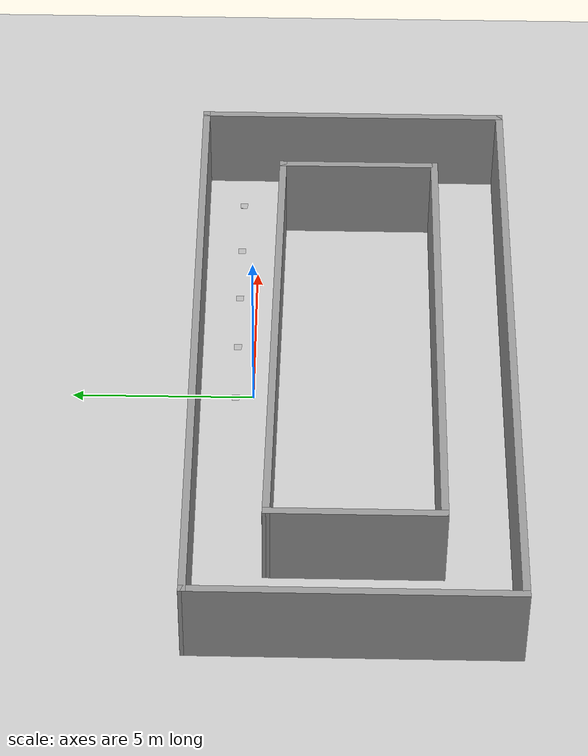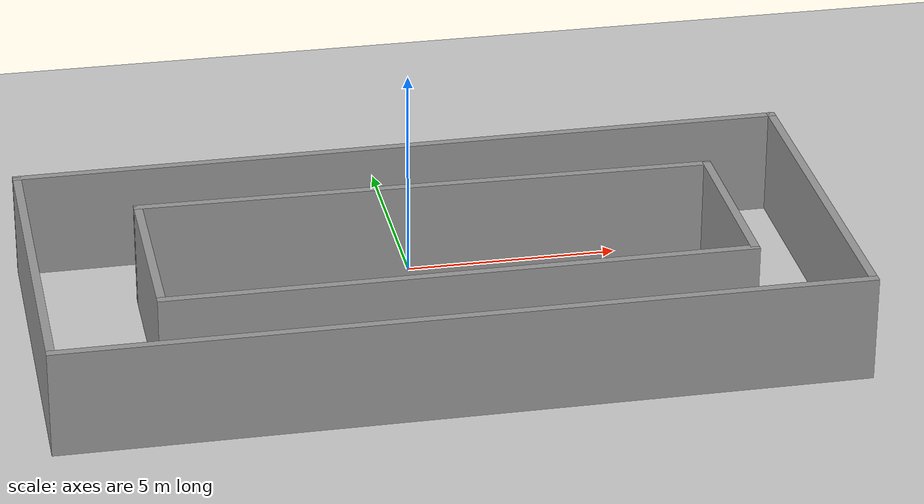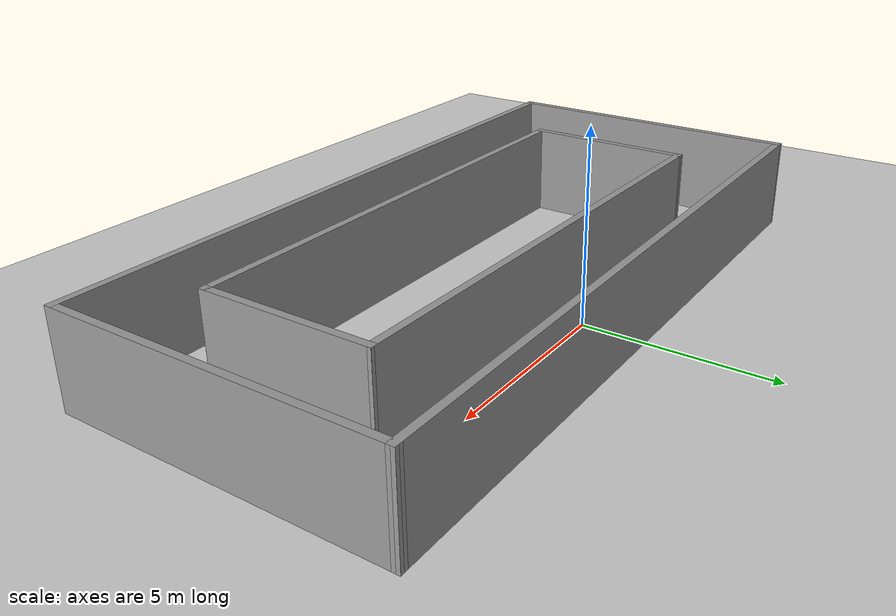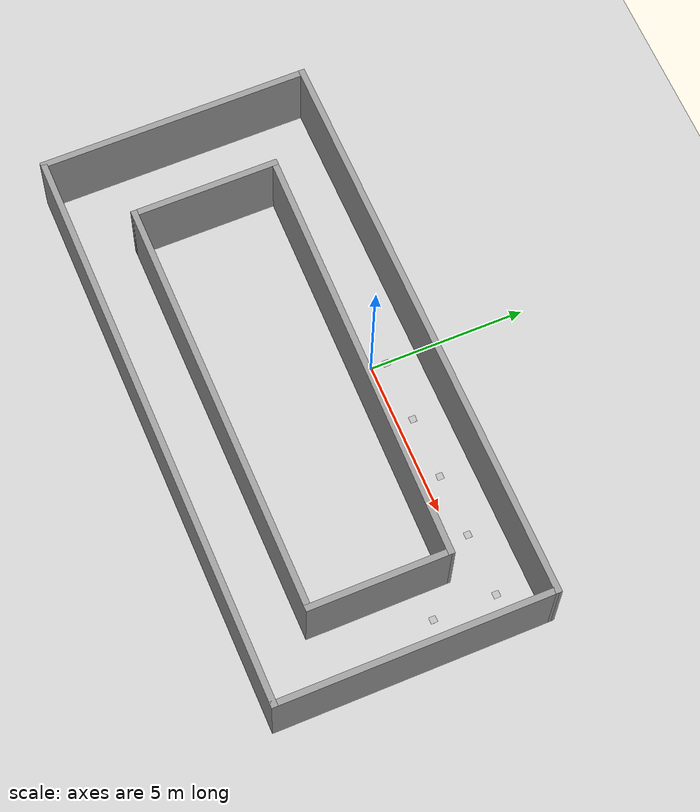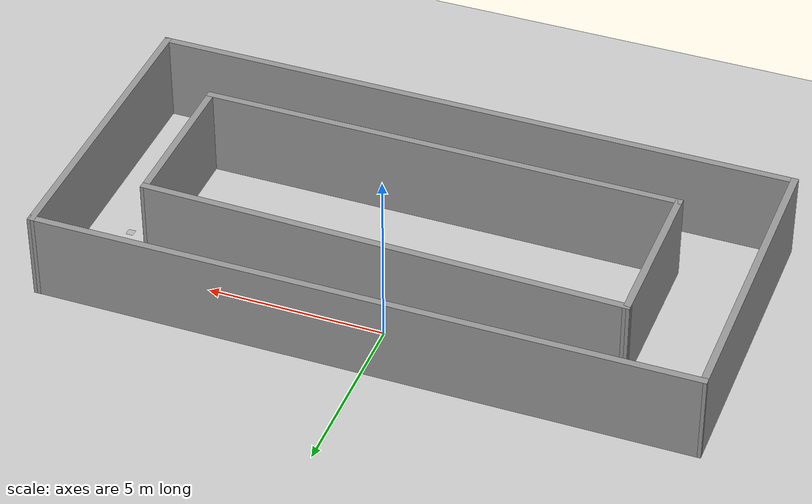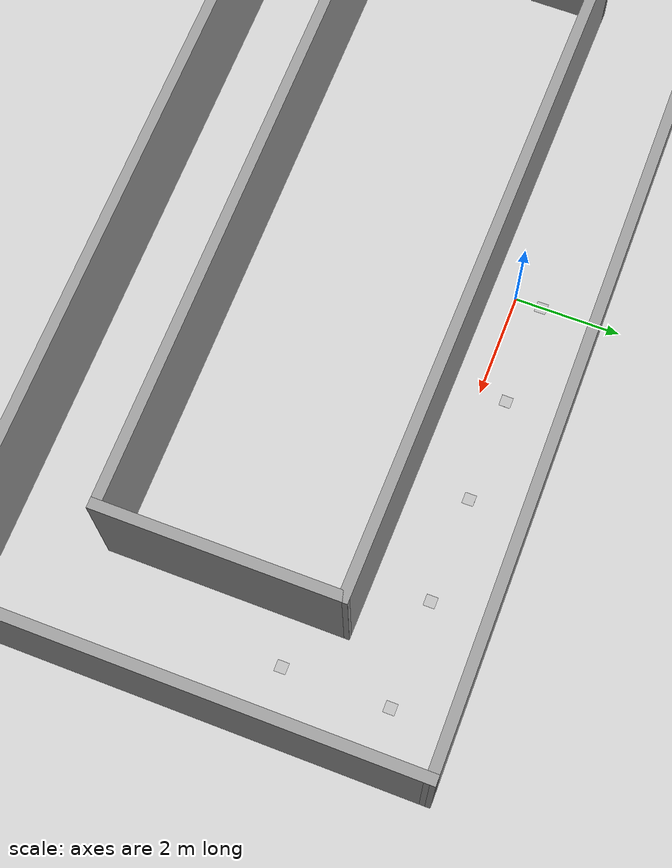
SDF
<sdf version="1.4">
 <world name="default">
  <light name="sun" type="directional">
   <pose>0 0 10 0 -0 0</pose>
   <diffuse>0.8 0.8 0.8 1</diffuse>
   <specular>0.2 0.2 0.2 1</specular>
   <attenuation>
    <range>1000</range>
    <constant>0.9</constant>
    <linear>0.01</linear>
    <quadratic>0.001</quadratic>
   </attenuation>
   <direction>-0.5 0.1 -0.9</direction>
  </light>
  <model name="ground_plane">
   <static>1</static>
   <link name="link">
    <collision name="collision">
     <geometry><plane><normal>0 0 1</normal><size>100 100</size></plane></geometry>
     <surface><friction><ode><mu>100</mu><mu2>50</mu2></ode></friction></surface>
    </collision>
    <visual name="visual">
     <cast_shadows>0</cast_shadows>
     <geometry><plane><normal>0 0 1</normal><size>100 100</size></plane></geometry>
     <material>
      <script><uri>file://media/materials/scripts/gazebo.material</uri><name>Gazebo/Grey</name></script>
     </material>
    </visual>
    <velocity_decay><linear>0</linear><angular>0</angular></velocity_decay>
   </link>
  </model>
  <physics type="ode">
   <max_step_size>0.001</max_step_size>
   <real_time_factor>1</real_time_factor>
   <real_time_update_rate>1000</real_time_update_rate>
   <gravity>0 0 -9.8</gravity>
  </physics>
  <scene><ambient>0.4 0.4 0.4 1</ambient><background>0.7 0.7 0.7 1</background><shadows>1</shadows></scene>
  <spherical_coordinates>
   <surface_model>EARTH_WGS84</surface_model>
   <latitude_deg>0</latitude_deg>
   <longitude_deg>0</longitude_deg>
   <elevation>0</elevation>
   <heading_deg>0</heading_deg>
  </spherical_coordinates>
  <model name="BuildingDefaultName">
   <link name="Wall_0">
    <collision name="Wall_0_Collision">
     <geometry><box><size>8.68893 0.2 2.5</size></box></geometry>
     <pose>0 0 1.25 0 -0 0</pose>
    </collision>
    <visual name="Wall_0_Visual">
     <pose>0 0 1.25 0 -0 0</pose>
     <geometry><box><size>8.68893 0.2 2.5</size></box></geometry>
     <material>
      <script><uri>file://media/materials/scripts/gazebo.material</uri><name>Gazebo/Grey</name></script>
     </material>
    </visual>
    <velocity_decay><linear>0</linear><angular>0</angular></velocity_decay>
    <pose>-9.03026 -2.72452 0 0 0 -1.5708</pose>
   </link>
   <link name="Wall_1">
    <collision name="Wall_1_Collision">
     <geometry><box><size>18.4732 0.2 2.5</size></box></geometry>
     <pose>0 0 1.25 0 -0 0</pose>
    </collision>
    <visual name="Wall_1_Visual">
     <pose>0 0 1.25 0 -0 0</pose>
     <geometry><box><size>18.4732 0.2 2.5</size></box></geometry>
     <material>
      <script><uri>file://media/materials/scripts/gazebo.material</uri><name>Gazebo/Grey</name></script>
     </material>
    </visual>
    <velocity_decay><linear>0</linear><angular>0</angular></velocity_decay>
    <pose>0.106327 -6.96899 0 0 -0 0</pose>
   </link>
   <link name="Wall_2">
    <collision name="Wall_2_Collision">
     <geometry><box><size>8.78145 0.2 2.5</size></box></geometry>
     <pose>0 0 1.25 0 -0 0</pose>
    </collision>
    <visual name="Wall_2_Visual">
     <pose>0 0 1.25 0 -0 0</pose>
     <geometry><box><size>8.78145 0.2 2.5</size></box></geometry>
     <material>
      <script><uri>file://media/materials/scripts/gazebo.material</uri><name>Gazebo/Grey</name></script>
     </material>
    </visual>
    <velocity_decay><linear>0</linear><angular>0</angular></velocity_decay>
    <pose>9.24292 -2.67826 0 0 -0 1.5708</pose>
   </link>
   <link name="Wall_3">
    <collision name="Wall_3_Collision">
     <geometry><box><size>18.4734 0.2 2.5</size></box></geometry>
     <pose>0 0 1.25 0 -0 0</pose>
    </collision>
    <visual name="Wall_3_Visual">
     <pose>0 0 1.25 0 -0 0</pose>
     <geometry><box><size>18.4734 0.2 2.5</size></box></geometry>
     <material>
      <script><uri>file://media/materials/scripts/gazebo.material</uri><name>Gazebo/Grey</name></script>
     </material>
    </visual>
    <velocity_decay><linear>0</linear><angular>0</angular></velocity_decay>
    <pose>0.106327 1.5662 0 0 0 -3.13653</pose>
   </link>
   <link name="Wall_5">
    <collision name="Wall_5_Collision">
     <geometry><box><size>4.7336 0.2 2.5</size></box></geometry>
     <pose>0 0 1.25 0 -0 0</pose>
    </collision>
    <visual name="Wall_5_Visual">
     <pose>0 0 1.25 0 -0 0</pose>
     <geometry><box><size>4.7336 0.2 2.5</size></box></geometry>
     <material>
      <script><uri>file://media/materials/scripts/gazebo.material</uri><name>Gazebo/Grey</name></script>
     </material>
    </visual>
    <velocity_decay><linear>0</linear><angular>0</angular></velocity_decay>
    <pose>-6.4165 -2.75922 0 0 0 -1.5708</pose>
   </link>
   <link name="Wall_6">
    <collision name="Wall_6_Collision">
     <geometry><box><size>13.662 0.2 2.5</size></box></geometry>
     <pose>0 0 1.25 0 -0 0</pose>
    </collision>
    <visual name="Wall_6_Visual">
     <pose>0 0 1.25 0 -0 0</pose>
     <geometry><box><size>13.662 0.2 2.5</size></box></geometry>
     <material>
      <script><uri>file://media/materials/scripts/gazebo.material</uri><name>Gazebo/Grey</name></script>
     </material>
    </visual>
    <velocity_decay><linear>0</linear><angular>0</angular></velocity_decay>
    <pose>0.314503 -5.02602 0 0 -0 0</pose>
   </link>
   <link name="Wall_7">
    <collision name="Wall_7_Collision">
     <geometry><box><size>4.54855 0.2 2.5</size></box></geometry>
     <pose>0 0 1.25 0 -0 0</pose>
    </collision>
    <visual name="Wall_7_Visual">
     <pose>0 0 1.25 0 -0 0</pose>
     <geometry><box><size>4.54855 0.2 2.5</size></box></geometry>
     <material>
      <script><uri>file://media/materials/scripts/gazebo.material</uri><name>Gazebo/Grey</name></script>
     </material>
    </visual>
    <velocity_decay><linear>0</linear><angular>0</angular></velocity_decay>
    <pose>7.04551 -2.85174 0 0 -0 1.5708</pose>
   </link>
   <link name="Wall_8">
    <collision name="Wall_8_Collision">
     <geometry><box><size>13.6633 0.2 2.5</size></box></geometry>
     <pose>0 0 1.25 0 -0 0</pose>
    </collision>
    <visual name="Wall_8_Visual">
     <pose>0 0 1.25 0 -0 0</pose>
     <geometry><box><size>13.6633 0.2 2.5</size></box></geometry>
     <material>
      <script><uri>file://media/materials/scripts/gazebo.material</uri><name>Gazebo/Grey</name></script>
     </material>
    </visual>
    <velocity_decay><linear>0</linear><angular>0</angular></velocity_decay>
    <pose>0.314503 -0.584944 0 0 -0 3.12785</pose>
   </link>
   <static>1</static>
  </model>
  <include>
   <uri>model://april_tag_0</uri>
   <name>april_tag_0</name>
   <pose>0.0 0.5 0.0 0.0 1.5708 0.0</pose>
  </include>
  <include>
   <uri>model://april_tag_1</uri>
   <name>april_tag_1</name>
   <pose>2.0 0.5 0.0 0.0 1.5708 0.0</pose>
  </include>
  <include>
   <uri>model://april_tag_2</uri>
   <name>april_tag_2</name>
   <pose>4.0 0.5 0.0 0.0 1.5708 0.0</pose>
  </include>
  <include>
   <uri>model://april_tag_3</uri>
   <name>april_tag_3</name>
   <pose>6.0 0.5 0.0 0.0 1.5708 0.0</pose>
  </include>
  <include>
   <uri>model://april_tag_4</uri>
   <name>april_tag_4</name>
   <pose>8.0 0.5 0.0 0.0 1.5708 0.0</pose>
  </include>
  <include>
   <uri>model://april_tag_5</uri>
   <name>april_tag_5</name>
   <pose>8.0 -1.5 0.0 0.0 1.5708 0.0</pose>
  </include>
 </world>
</sdf>

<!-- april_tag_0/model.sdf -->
<sdf version='1.4'>
  <model name="april_tag_0">
    <static>true</static>
    <pose>0 0 0 -1.5707963267948966 0 0</pose>
    <link name="tag">
      <pose>0 0 0 0 0 0</pose>
      <visual name='visual'>
        <geometry>
          <mesh>
            <uri>
              model://april_tag_0/meshes/april_tag_0.dae
            </uri>
          </mesh>
        </geometry>
      </visual>
    </link>
  </model>
</sdf>

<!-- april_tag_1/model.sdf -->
<sdf version='1.4'>
  <model name="april_tag_1">
    <static>true</static>
    <pose>0 0 0 -1.5707963267948966 0 0</pose>
    <link name="tag">
      <pose>0 0 0 0 0 0</pose>
      <visual name='visual'>
        <geometry>
          <mesh>
            <uri>
              model://april_tag_1/meshes/april_tag_1.dae
            </uri>
          </mesh>
        </geometry>
      </visual>
    </link>
  </model>
</sdf>

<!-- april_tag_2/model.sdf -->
<sdf version='1.4'>
  <model name="april_tag_2">
    <static>true</static>
    <pose>0 0 0 -1.5707963267948966 0 0</pose>
    <link name="tag">
      <pose>0 0 0 0 0 0</pose>
      <visual name='visual'>
        <geometry>
          <mesh>
            <uri>
              model://april_tag_2/meshes/april_tag_2.dae
            </uri>
          </mesh>
        </geometry>
      </visual>
    </link>
  </model>
</sdf>

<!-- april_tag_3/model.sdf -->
<sdf version='1.4'>
  <model name="april_tag_3">
    <static>true</static>
    <pose>0 0 0 -1.5707963267948966 0 0</pose>
    <link name="tag">
      <pose>0 0 0 0 0 0</pose>
      <visual name='visual'>
        <geometry>
          <mesh>
            <uri>
              model://april_tag_3/meshes/april_tag_3.dae
            </uri>
          </mesh>
        </geometry>
      </visual>
    </link>
  </model>
</sdf>

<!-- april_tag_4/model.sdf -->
<sdf version='1.4'>
  <model name="april_tag_4">
    <static>true</static>
    <pose>0 0 0 -1.5707963267948966 0 0</pose>
    <link name="tag">
      <pose>0 0 0 0 0 0</pose>
      <visual name='visual'>
        <geometry>
          <mesh>
            <uri>
              model://april_tag_4/meshes/april_tag_4.dae
            </uri>
          </mesh>
        </geometry>
      </visual>
    </link>
  </model>
</sdf>

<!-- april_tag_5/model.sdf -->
<sdf version='1.4'>
  <model name="april_tag_5">
    <static>true</static>
    <pose>0 0 0 -1.5707963267948966 0 0</pose>
    <link name="tag">
      <pose>0 0 0 0 0 0</pose>
      <visual name='visual'>
        <geometry>
          <mesh>
            <uri>
              model://april_tag_5/meshes/april_tag_5.dae
            </uri>
          </mesh>
        </geometry>
      </visual>
    </link>
  </model>
</sdf>
